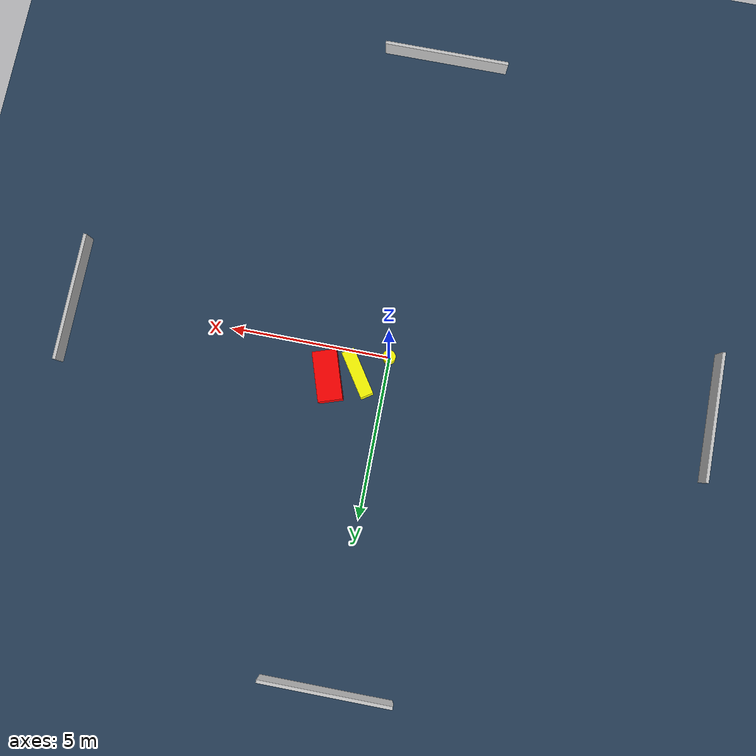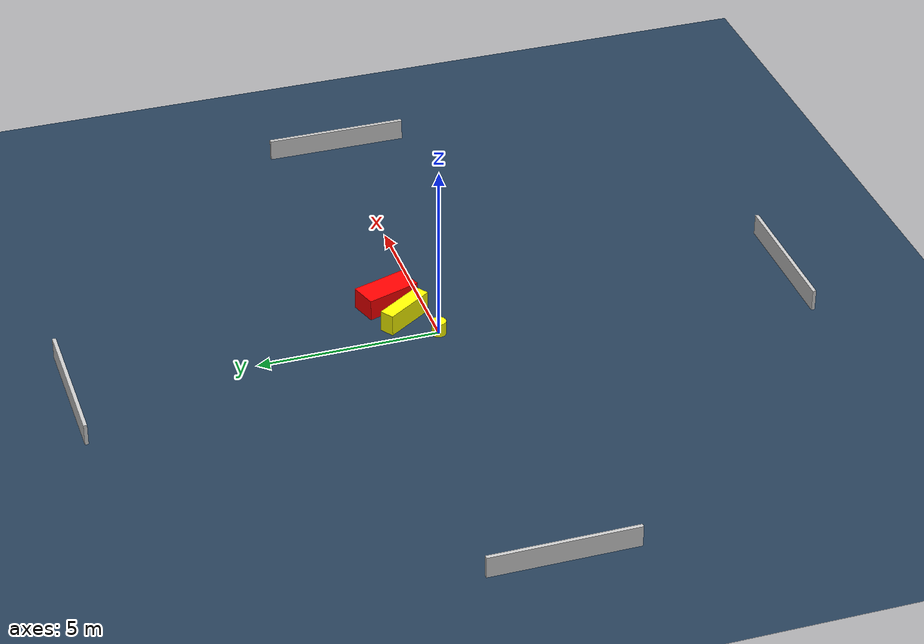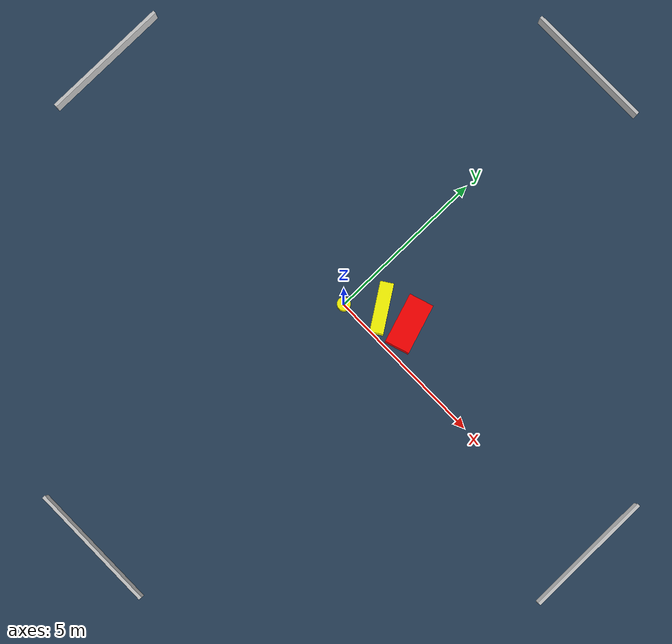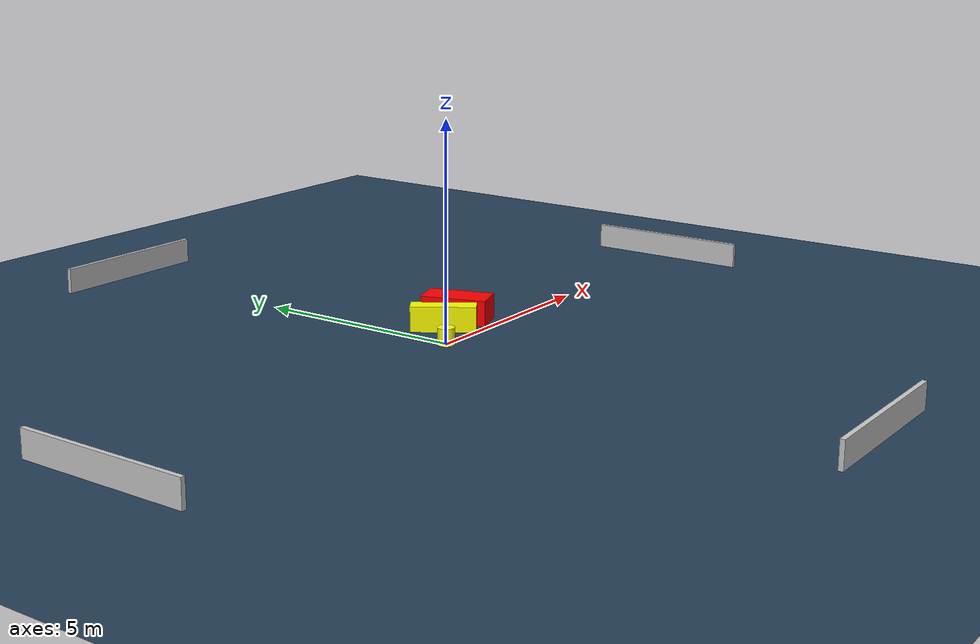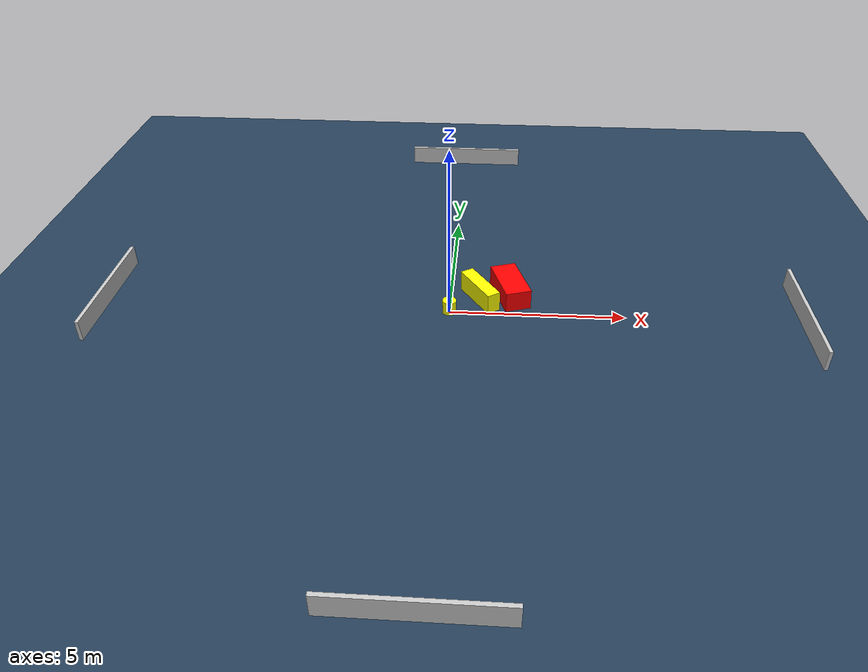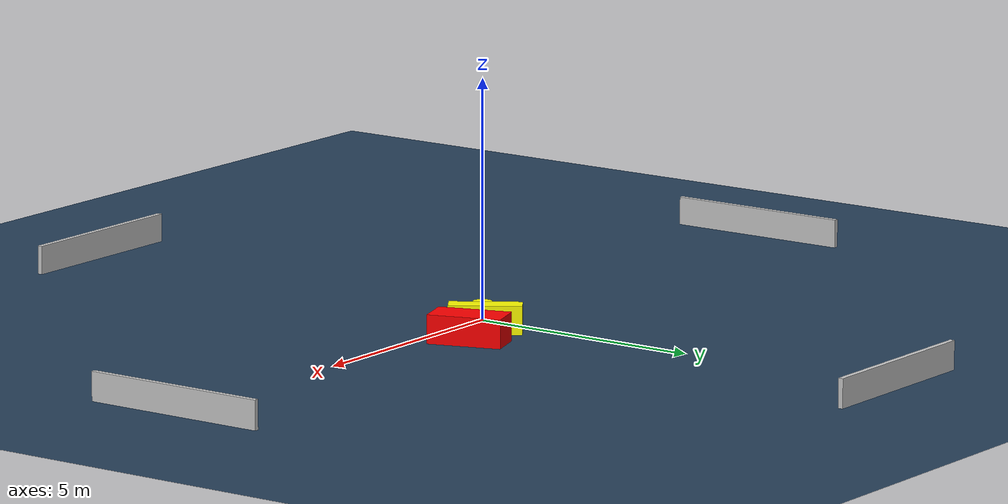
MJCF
<?xml version="1.0" ?>
<mujoco model="generated_environment">
  <option timestep="0.01" integrator="RK4" cone="elliptic"/>
  <default>
    <geom density="1"/>
  </default>
  <asset>
    <texture builtin="gradient" height="3072" name="skybox" rgb1="0.3 0.5 0.7" rgb2="0 0 0" type="skybox" width="512"/>
    <texture builtin="checker" height="300" name="groundplane" rgb1="0.2 0.3 0.4" rgb2="0.1 0.2 0.3" type="2d" width="300"/>
    <material name="groundplane" reflectance="0.2" texrepeat="5 5" texture="groundplane"/>
  </asset>
  <worldbody>
    <light dir="0 0 -1" directional="true" pos="0 0 1.5"/>
    <geom condim="3" friction="0.5 0.005 0.001" material="groundplane" name="floor" pos="0 0 0" size="0 0 0.05" type="plane"/>
    <body name="walls">
      <geom name="wall_1" condim="4" pos="-10.0 0.0 0.3" rgba="0.800000011920929 0.800000011920929 0.800000011920929 1.0" size="0.05 2.0 0.3" type="box"/>
      <geom name="wall_2" condim="4" pos="10.0 0.0 0.3" rgba="0.800000011920929 0.800000011920929 0.800000011920929 1.0" size="0.05 2.0 0.3" type="box"/>
      <geom name="wall_3" condim="4" pos="0.0 -10.0 0.3" rgba="0.800000011920929 0.800000011920929 0.800000011920929 1.0" size="2.0 0.05 0.3" type="box"/>
      <geom name="wall_4" condim="4" pos="0.0 10.0 0.3" rgba="0.800000011920929 0.800000011920929 0.800000011920929 1.0" size="2.0 0.05 0.3" type="box"/>
    </body>
    <body name="robot">
      <joint name="joint_x" type="slide" pos="0 0 0" axis="1 0 0"/>
      <joint name="joint_y" type="slide" pos="0 0 0" axis="0 1 0"/>
      <geom name="robot" type="cylinder" pos="0.0 0.0 0.2" size="0.2 0.2 0.0" mass="5.0" friction="1.0 0.005 0.0001" condim="4" rgba="1.0 1.0 0.0 1.0"/>
    </body>
    <body name="obstacle_1_movable">
      <geom name="obstacle_1_movable" condim="4" pos="0.8529302843092295 0.6970113115583523 0.3" euler="0 0 33.70788866771338" friction="0.0 0.005 0.001" rgba="1.0 1.0 0.0 1.0" size="0.20320383291892777 0.7503016076037916 0.3" type="box" mass="0.1"/>
      <joint type="free"/>
    </body>
    <body name="obstacle_2_static">
      <geom name="obstacle_2_static" condim="4" pos="1.73512209633348 0.9428727227814061 0.3" euler="0 0 108.19726342332893" friction="0.0 0.005 0.001" rgba="1.0 0.0 0.0 1.0" size="0.7712583924822107 0.3793492864692801 0.3" type="box"/>
    </body>
  </worldbody>
  <actuator>
    <motor name="actuator_x" joint="joint_x" gear="1" ctrlrange="-1 1"/>
    <motor name="actuator_y" joint="joint_y" gear="1" ctrlrange="-1 1"/>
  </actuator>
</mujoco>
